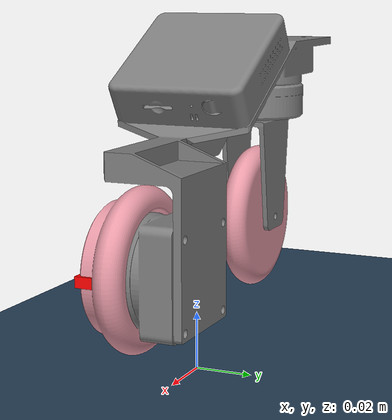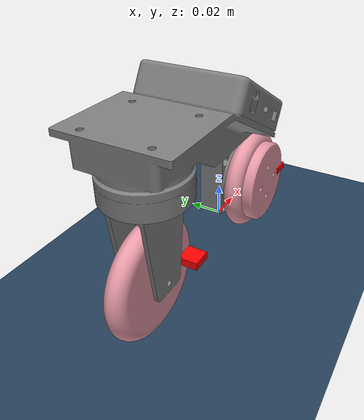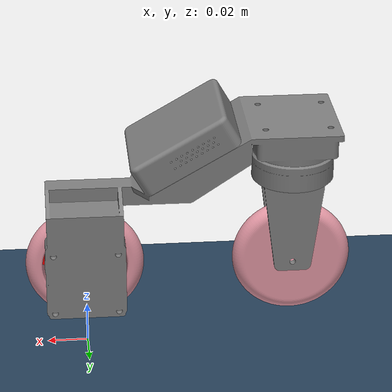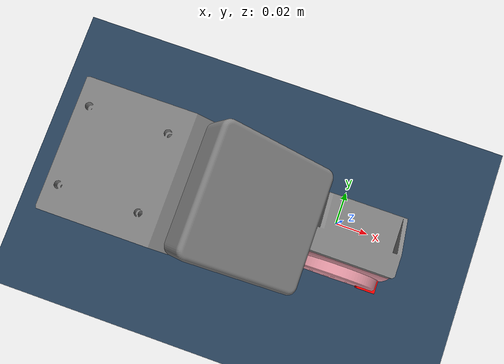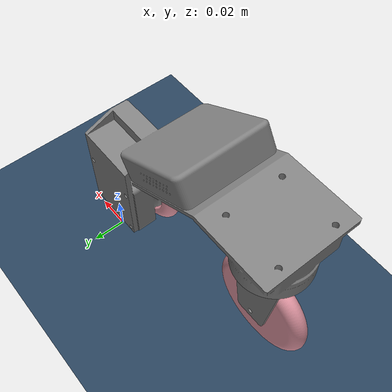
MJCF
<mujoco model="two_wheel_bike">
    <compiler angle="radian"/>
    <option integrator="RK4" timestep="0.0002" gravity="0 0 -9.81"/>
    <option cone="elliptic"/>
    <option solver="PGS"/>    <!-- 脚系のロボットより bike はPGSの方が安定 -->
    <option iterations="50"/>
<default>
        <default class="stl">
            <geom type="mesh" xyaxes="1 0 0 0 0 1"/>
        </default>

        <default class="visual_tire">
            <geom type="mesh" xyaxes="1 0 0 0 1 0" friction="0.8 0.5 0.001"/>
        </default>

        <default class="collision_tire">
            <geom type="cylinder" size="0.032 0.005" rgba="0 0 1 0.3"/>
        </default>
    </default>
    <asset>
        <texture type="2d" name="groundplane" builtin="checker" mark="edge" rgb1="0.2 0.3 0.4" rgb2="0.1 0.2 0.3"
          markrgb="0.8 0.8 0.8" width="300" height="300"/>
        <material name="groundplane" texture="groundplane" texuniform="true" texrepeat="5 5" reflectance="0.2"/>
        <texture name="grid_tex" type="2d" builtin="checker" rgb1="0.9 0.3 0.4" rgb2="0.9 0.9 0.9"
                width="512" height="512" mark="cross" markrgb="0 0 0"/>
        <material name="F_wheel_tex" texture="grid_tex" texuniform="true" texrepeat="1 1" reflectance="0.1"/>
        <mesh name="body" file="models/body.stl" scale="0.001 0.001 0.001"/>
        <mesh name="F_wheel" file="models/F_wheel.stl" scale="0.001 0.001 0.001"/>
        <mesh name="R_wheel" file="models/R_wheel.stl" scale="0.001 0.001 0.001"/>
        <mesh name="fork" file="models/fork.stl" scale="0.001 0.001 0.001"/>
    </asset>
    <worldbody>
        <light pos="0 0 10.5" dir="0 0 -1" directional="true"/>
        <geom name="floor" size="0 0 0.05" type="plane" material="groundplane"/>

        <body name="body" pos="0 0 0.033">
            <inertial pos="-0.050251 0.044412 0.017903" mass="0.2151"
                fullinertia="1.473e-3 2.817e-3 3.852e-3 1.345e-3 1.834e-4 -1.423e-4"/>
            <geom mesh="body" class="stl" contype="0" conaffinity="0"/>
            <joint type="free" name="body_free_joint"/>
            <site name="imu_site" pos="-0.05 0 0.07" size="0.005"/>
            <body name="fork" pos="-0.105 -0.02 0.041">
                <inertial pos="0 -0.016822 0" mass="0.048253"
                        fullinertia="1.3534e-5 5.6705e-6 1.3103e-5 0 0 0"/>
                <joint name="joint_fork" type="hinge" axis="0 0 1" limited="true" range="-1.57 1.57"/>
                <geom mesh="fork" class="stl" contype="0" conaffinity="0"/>
                <body name="F_wheel" pos="0 -0.005 -0.040">
                    <inertial pos="0 0.005508 0" mass="0.243435"
                        fullinertia="5.2849e-5 1.0120e-4 5.2849e-5 0 0 0"/>
                    <joint name="joint_F_wheel" type="hinge" axis="0 1 0" damping="0.00005"/>
                    <geom mesh="F_wheel" class="visual_tire" material="F_wheel_tex"/>
                    <geom type="box" size="0.005 0.01 0.002" pos="0.02 0 0" rgba="1 0 0 1"/>
                </body>
            </body>
            <body name="R_wheel" pos="0 -0.027 0">
                <inertial pos="0 0.002777 0" mass="0.148797"
                    fullinertia="4.5897e-5 8.4246e-5 4.5897e-5 0 0 0"/>
                <joint name="joint_R_wheel" type="hinge" axis="0 1 0" damping="0.00005"/>
                <geom mesh="R_wheel" class="visual_tire" material="F_wheel_tex"/>
                <geom type="box" size="0.005 0.005 0.002" pos="0.02 -0.002 0" rgba="1 0 0 1"/>
            </body>
        </body>
    </worldbody>
    <actuator>
        <position name="fork" joint="joint_fork"/>
        <motor joint="joint_F_wheel" ctrlrange="-10 10"/>
        <motor joint="joint_R_wheel" ctrlrange="-10 10"/>
    </actuator>
    <sensor>
        <jointpos name="F_wheel_pos" joint="joint_fork" noise="0.0001"/>
        <jointvel name="F_wheel_vel" joint="joint_fork" noise="0.001"/>
        <jointpos name="R_wheel_pos" joint="joint_R_wheel" noise="0.0001"/>
        <jointvel name="R_wheel_vel" joint="joint_R_wheel" noise="0.001"/>
        <accelerometer name="imu" site="imu_site"/>
        <framequat name="imu_quat" objtype="site" objname="imu_site" noise="0.01"/>
        <gyro name="imu_gyro" site="imu_site" noise="0.005"/>
    </sensor>
</mujoco>
